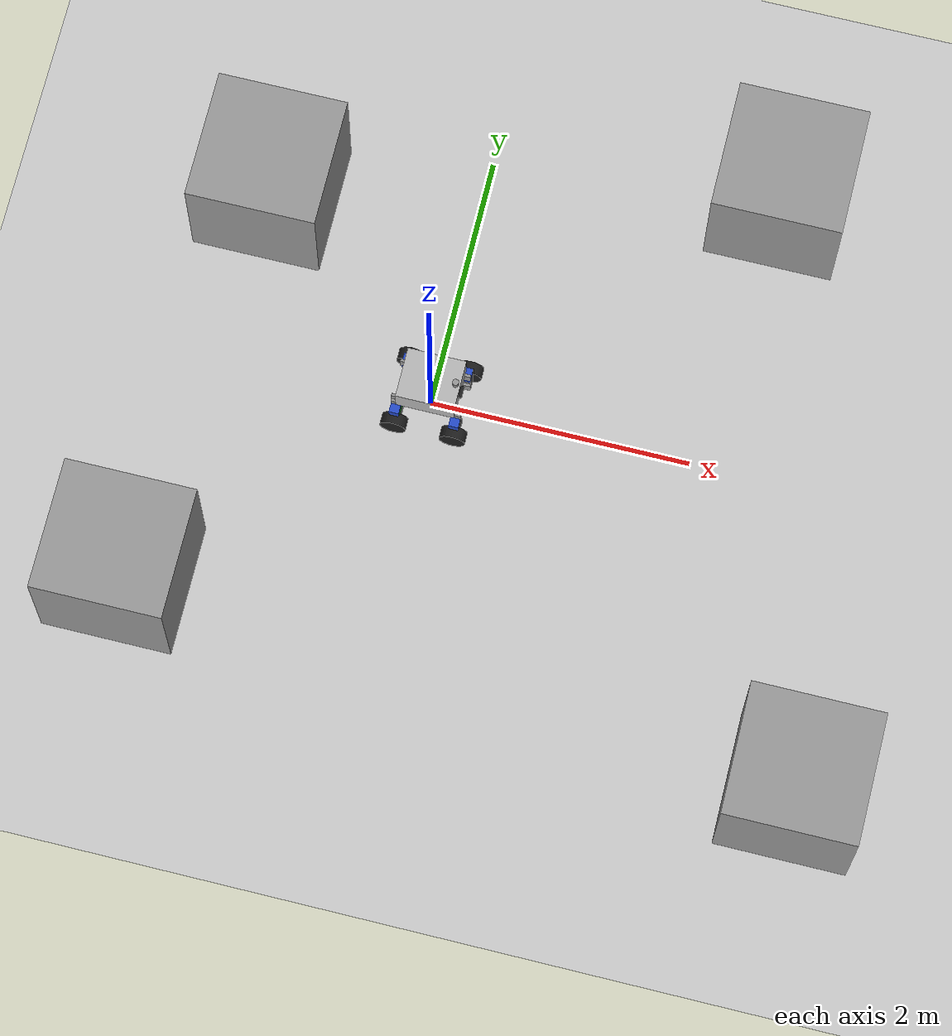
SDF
<sdf version="1.6">
 <world name="default">
  <light name="sun" type="directional">
   <pose>0 0 10 0 -0 0</pose>
   <diffuse>0.8 0.8 0.8 1</diffuse>
   <specular>0.2 0.2 0.2 1</specular>
   <attenuation>
    <range>1000</range>
    <constant>0.9</constant>
    <linear>0.01</linear>
    <quadratic>0.001</quadratic>
   </attenuation>
   <direction>-0.5 0.1 -0.9</direction>
  </light>
  <model name="ground_plane">
   <static>1</static>
   <link name="link">
    <collision name="collision">
     <geometry><plane><normal>0 0 1</normal><size>100 100</size></plane></geometry>
     <surface>
      <contact><collide_bitmask>65535</collide_bitmask></contact>
      <friction><ode><mu>100</mu><mu2>50</mu2></ode></friction>
     </surface>
    </collision>
    <visual name="visual">
     <cast_shadows>0</cast_shadows>
     <geometry><plane><normal>0 0 1</normal><size>100 100</size></plane></geometry>
     <material>
      <script><uri>file://media/materials/scripts/gazebo.material</uri><name>Gazebo/Grey</name></script>
     </material>
    </visual>
   </link>
  </model>
  <gravity>0 0 -9.8</gravity>
  <magnetic_field>6e-06 2.3e-05 -4.2e-05</magnetic_field>
  <atmosphere type="adiabatic"/>
  <physics name="default_physics" default="0" type="ode">
   <max_step_size>0.001</max_step_size>
   <real_time_factor>1</real_time_factor>
   <real_time_update_rate>1000</real_time_update_rate>
  </physics>
  <scene><ambient>0.4 0.4 0.4 1</ambient><background>0.7 0.7 0.7 1</background><shadows>1</shadows></scene>
  <audio><device>default</device></audio>
  <spherical_coordinates>
   <surface_model>EARTH_WGS84</surface_model>
   <latitude_deg>0</latitude_deg>
   <longitude_deg>0</longitude_deg>
   <elevation>0</elevation>
   <heading_deg>0</heading_deg>
  </spherical_coordinates>
  <model name="PF1">
   <link name="base_link">
    <inertial>
     <pose>0.009197 0 -0.056303 0 -0 0</pose>
     <mass>14.564</mass>
     <inertia>
      <ixx>5.27791</ixx>
      <ixy>0</ixy>
      <ixz>-0.00754182</ixz>
      <iyy>5.36461</iyy>
      <iyz>0</iyz>
      <izz>5.39816</izz>
     </inertia>
    </inertial>
    <collision name="base_link_collision"><geometry><box><size>0.45 0.39 0.2</size></box></geometry></collision>
    <collision name="base_link_fixed_joint_lump__base_sensor_collision_1">
     <geometry><cylinder><length>0.01</length><radius>0.005</radius></cylinder></geometry>
    </collision>
    <collision name="base_link_fixed_joint_lump__camera_link_collision_2">
     <pose>0.2375 -0.0175 0 0 -0 0</pose>
     <geometry><box><size>0.02505 0.09 0.025</size></box></geometry>
     <surface>
      <contact><ode><kp>1e+13</kp><kd>1</kd></ode></contact>
      <friction><ode><mu2>1</mu2><fdir1>0 0 0</fdir1></ode></friction>
     </surface>
    </collision>
    <collision name="base_link_fixed_joint_lump__front_lidar_collision_3">
     <pose>0.19 0 0.125 0 -0 0</pose>
     <geometry><cylinder><length>0.05</length><radius>0.025</radius></cylinder></geometry>
    </collision>
    <collision name="base_link_fixed_joint_lump__frame1_bl_collision_4">
     <pose>-0.135 0.14 -0.1 0 -0 0</pose>
     <geometry><box><size>0.27 0.02 0.09</size></box></geometry>
    </collision>
    <collision name="base_link_fixed_joint_lump__frame2_bl_collision_5">
     <pose>-0.23 0.16 -0.145 0 -0 0</pose>
     <geometry><box><size>0.08 0.02 0.05</size></box></geometry>
    </collision>
    <collision name="base_link_fixed_joint_lump__gear_bl_collision_6">
     <pose>-0.23 0.195 -0.205 0 -0 0</pose>
     <geometry><box><size>0.075 0.09 0.07</size></box></geometry>
    </collision>
    <collision name="base_link_fixed_joint_lump__frame1_br_collision_7">
     <pose>-0.135 -0.14 -0.1 0 -0 0</pose>
     <geometry><box><size>0.27 0.02 0.09</size></box></geometry>
    </collision>
    <collision name="base_link_fixed_joint_lump__frame2_br_collision_8">
     <pose>-0.23 -0.16 -0.145 0 -0 0</pose>
     <geometry><box><size>0.08 0.02 0.05</size></box></geometry>
    </collision>
    <collision name="base_link_fixed_joint_lump__gear_br_collision_9">
     <pose>-0.23 -0.195 -0.205 0 -0 0</pose>
     <geometry><box><size>0.075 0.09 0.07</size></box></geometry>
    </collision>
    <collision name="base_link_fixed_joint_lump__frame1_fl_collision_10">
     <pose>0.135 0.14 -0.1 0 -0 0</pose>
     <geometry><box><size>0.27 0.02 0.09</size></box></geometry>
    </collision>
    <collision name="base_link_fixed_joint_lump__frame2_fl_collision_11">
     <pose>0.23 0.16 -0.145 0 -0 0</pose>
     <geometry><box><size>0.08 0.02 0.05</size></box></geometry>
    </collision>
    <collision name="base_link_fixed_joint_lump__gear_fl_collision_12">
     <pose>0.23 0.195 -0.205 0 -0 0</pose>
     <geometry><box><size>0.075 0.09 0.07</size></box></geometry>
    </collision>
    <collision name="base_link_fixed_joint_lump__frame1_fr_collision_13">
     <pose>0.135 -0.14 -0.1 0 -0 0</pose>
     <geometry><box><size>0.27 0.02 0.09</size></box></geometry>
    </collision>
    <collision name="base_link_fixed_joint_lump__frame2_fr_collision_14">
     <pose>0.23 -0.16 -0.145 0 -0 0</pose>
     <geometry><box><size>0.08 0.02 0.05</size></box></geometry>
    </collision>
    <collision name="base_link_fixed_joint_lump__gear_fr_collision_15">
     <pose>0.23 -0.195 -0.205 0 -0 0</pose>
     <geometry><box><size>0.075 0.09 0.07</size></box></geometry>
    </collision>
    <collision name="base_link_fixed_joint_lump__imu_link_collision_16">
     <geometry><cylinder><length>0.01</length><radius>0.005</radius></cylinder></geometry>
    </collision>
    <visual name="base_link_visual"><geometry><box><size>0.45 0.39 0.2</size></box></geometry></visual>
    <visual name="base_link_fixed_joint_lump__base_sensor_visual_1">
     <geometry><cylinder><length>0.01</length><radius>0.005</radius></cylinder></geometry>
    </visual>
    <visual name="base_link_fixed_joint_lump__camera_link_visual_2">
     <pose>0.2375 -0.0175 0 1.5708 -0 1.5708</pose>
     <geometry><box><size>0.09 0.025 0.02505</size></box></geometry>
     <material>
      <script><name>Gazebo/Black</name><uri>file://media/materials/scripts/gazebo.material</uri></script>
     </material>
    </visual>
    <visual name="base_link_fixed_joint_lump__front_lidar_visual_3">
     <pose>0.19 0 0.125 0 -0 0</pose>
     <geometry><cylinder><length>0.05</length><radius>0.025</radius></cylinder></geometry>
     <material>
      <script><name>Gazebo/Grey</name><uri>file://media/materials/scripts/gazebo.material</uri></script>
     </material>
    </visual>
    <visual name="base_link_fixed_joint_lump__frame1_bl_visual_4">
     <pose>-0.135 0.14 -0.1 0 -0 0</pose>
     <geometry><box><size>0.27 0.02 0.09</size></box></geometry>
     <material>
      <script><name>Gazebo/Grey</name><uri>file://media/materials/scripts/gazebo.material</uri></script>
     </material>
    </visual>
    <visual name="base_link_fixed_joint_lump__frame2_bl_visual_5">
     <pose>-0.23 0.16 -0.145 0 -0 0</pose>
     <geometry><box><size>0.08 0.02 0.05</size></box></geometry>
     <material>
      <script><name>Gazebo/Grey</name><uri>file://media/materials/scripts/gazebo.material</uri></script>
     </material>
    </visual>
    <visual name="base_link_fixed_joint_lump__gear_bl_visual_6">
     <pose>-0.23 0.195 -0.205 0 -0 0</pose>
     <geometry><box><size>0.075 0.09 0.07</size></box></geometry>
     <material>
      <script><name>Gazebo/Blue</name><uri>file://media/materials/scripts/gazebo.material</uri></script>
     </material>
    </visual>
    <visual name="base_link_fixed_joint_lump__frame1_br_visual_7">
     <pose>-0.135 -0.14 -0.1 0 -0 0</pose>
     <geometry><box><size>0.27 0.02 0.09</size></box></geometry>
     <material>
      <script><name>Gazebo/Grey</name><uri>file://media/materials/scripts/gazebo.material</uri></script>
     </material>
    </visual>
    <visual name="base_link_fixed_joint_lump__frame2_br_visual_8">
     <pose>-0.23 -0.16 -0.145 0 -0 0</pose>
     <geometry><box><size>0.08 0.02 0.05</size></box></geometry>
     <material>
      <script><name>Gazebo/Grey</name><uri>file://media/materials/scripts/gazebo.material</uri></script>
     </material>
    </visual>
    <visual name="base_link_fixed_joint_lump__gear_br_visual_9">
     <pose>-0.23 -0.195 -0.205 0 -0 0</pose>
     <geometry><box><size>0.075 0.09 0.07</size></box></geometry>
     <material>
      <script><name>Gazebo/Blue</name><uri>file://media/materials/scripts/gazebo.material</uri></script>
     </material>
    </visual>
    <visual name="base_link_fixed_joint_lump__frame1_fl_visual_10">
     <pose>0.135 0.14 -0.1 0 -0 0</pose>
     <geometry><box><size>0.27 0.02 0.09</size></box></geometry>
     <material>
      <script><name>Gazebo/Grey</name><uri>file://media/materials/scripts/gazebo.material</uri></script>
     </material>
    </visual>
    <visual name="base_link_fixed_joint_lump__frame2_fl_visual_11">
     <pose>0.23 0.16 -0.145 0 -0 0</pose>
     <geometry><box><size>0.08 0.02 0.05</size></box></geometry>
     <material>
      <script><name>Gazebo/Grey</name><uri>file://media/materials/scripts/gazebo.material</uri></script>
     </material>
    </visual>
    <visual name="base_link_fixed_joint_lump__gear_fl_visual_12">
     <pose>0.23 0.195 -0.205 0 -0 0</pose>
     <geometry><box><size>0.075 0.09 0.07</size></box></geometry>
     <material>
      <script><name>Gazebo/Blue</name><uri>file://media/materials/scripts/gazebo.material</uri></script>
     </material>
    </visual>
    <visual name="base_link_fixed_joint_lump__frame1_fr_visual_13">
     <pose>0.135 -0.14 -0.1 0 -0 0</pose>
     <geometry><box><size>0.27 0.02 0.09</size></box></geometry>
     <material>
      <script><name>Gazebo/Grey</name><uri>file://media/materials/scripts/gazebo.material</uri></script>
     </material>
    </visual>
    <visual name="base_link_fixed_joint_lump__frame2_fr_visual_14">
     <pose>0.23 -0.16 -0.145 0 -0 0</pose>
     <geometry><box><size>0.08 0.02 0.05</size></box></geometry>
     <material>
      <script><name>Gazebo/Grey</name><uri>file://media/materials/scripts/gazebo.material</uri></script>
     </material>
    </visual>
    <visual name="base_link_fixed_joint_lump__gear_fr_visual_15">
     <pose>0.23 -0.195 -0.205 0 -0 0</pose>
     <geometry><box><size>0.075 0.09 0.07</size></box></geometry>
     <material>
      <script><name>Gazebo/Blue</name><uri>file://media/materials/scripts/gazebo.material</uri></script>
     </material>
    </visual>
    <visual name="base_link_fixed_joint_lump__imu_link_visual_16">
     <geometry><cylinder><length>0.01</length><radius>0.005</radius></cylinder></geometry>
     <material>
      <script><name>Gazebo/Blue</name><uri>file://media/materials/scripts/gazebo.material</uri></script>
     </material>
    </visual>
    <sensor name="cameracolor" type="camera">
     <camera name="camera">
      <horizontal_fov>1.21126</horizontal_fov>
      <image><width>640</width><height>480</height><format>RGB_INT8</format></image>
      <clip><near>0.1</near><far>100</far></clip>
      <noise><type>gaussian</type><mean>0</mean><stddev>0.007</stddev></noise>
     </camera>
     <always_on>1</always_on>
     <update_rate>30</update_rate>
     <visualize>1</visualize>
     <pose>0.2375 0 0 0 -0 0</pose>
    </sensor>
    <sensor name="cameraired1" type="camera">
     <camera name="camera">
      <horizontal_fov>1.48702</horizontal_fov>
      <image><width>1280</width><height>720</height><format>L_INT8</format></image>
      <clip><near>0.1</near><far>100</far></clip>
      <noise><type>gaussian</type><mean>0</mean><stddev>0.05</stddev></noise>
     </camera>
     <always_on>1</always_on>
     <update_rate>90</update_rate>
     <visualize>0</visualize>
     <pose>0.2375 0 0 0 -0 0</pose>
    </sensor>
    <sensor name="cameraired2" type="camera">
     <camera name="camera">
      <horizontal_fov>1.48702</horizontal_fov>
      <image><width>1280</width><height>720</height><format>L_INT8</format></image>
      <clip><near>0.1</near><far>100</far></clip>
      <noise><type>gaussian</type><mean>0</mean><stddev>0.05</stddev></noise>
     </camera>
     <always_on>1</always_on>
     <update_rate>90</update_rate>
     <visualize>0</visualize>
     <pose>0.2375 0 0 0 -0 0</pose>
    </sensor>
    <sensor name="cameradepth" type="depth">
     <camera name="camera">
      <horizontal_fov>1.48702</horizontal_fov>
      <image><width>1280</width><height>720</height></image>
      <clip><near>0.1</near><far>100</far></clip>
      <noise><type>gaussian</type><mean>0</mean><stddev>0.1</stddev></noise>
     </camera>
     <always_on>1</always_on>
     <update_rate>90</update_rate>
     <visualize>0</visualize>
     <pose>0.2375 0 0 0 -0 0</pose>
    </sensor>
    <sensor name="$front_lidar_sensor" type="ray">
     <visualize>1</visualize>
     <update_rate>10</update_rate>
     <ray>
      <scan>
       <horizontal>
        <samples>400</samples>
        <resolution>1</resolution>
        <min_angle>-1.5708</min_angle>
        <max_angle>1.5708</max_angle>
       </horizontal>
       <vertical><samples>1</samples><min_angle>0</min_angle><max_angle>0</max_angle></vertical>
      </scan>
      <range><min>0.1</min><max>20</max><resolution>0.01</resolution></range>
      <noise><type>gaussian</type><mean>0</mean><stddev>0.01</stddev></noise>
     </ray>
     <plugin name="gazebo_ros_lidar_controller" filename="libgazebo_ros_laser.so">
      <topicName>scan</topicName>
      <frameName>front_lidar</frameName>
      <robotNamespace>/</robotNamespace>
     </plugin>
     <pose>0.19 0 0.125 0 -0 0</pose>
    </sensor>
    <sensor name="imu_sensor" type="imu">
     <always_on>1</always_on>
     <update_rate>100</update_rate>
     <visualize>1</visualize>
     <topic>data</topic>
     <plugin name="imu_plugin" filename="libgazebo_ros_imu_sensor.so">
      <topicName>imu/data</topicName>
      <bodyName>imu_link</bodyName>
      <updateRateHZ>10.0</updateRateHZ>
      <gaussianNoise>0.0</gaussianNoise>
      <xyzOffset>0 0 0</xyzOffset>
      <rpyOffset>0 0 0</rpyOffset>
      <frameName>imu_link</frameName>
      <robotNamespace>/</robotNamespace>
     </plugin>
    </sensor>
   </link>
   <link name="frame3_bl">
    <pose>-0.23 0.215 -0.285 0 -0 0</pose>
    <inertial>
     <pose>0 -0.01 -0.045 0 -0 0</pose>
     <mass>2</mass>
     <inertia>
      <ixx>2.00425</ixx>
      <ixy>0</ixy>
      <ixz>0</ixz>
      <iyy>2.00405</iyy>
      <iyz>-0.0009</iyz>
      <izz>2.0002</izz>
     </inertia>
    </inertial>
    <collision name="frame3_bl_collision">
     <geometry><box><size>0.075 0.09 0.09</size></box></geometry>
     <surface><friction><ode><mu>2500</mu><mu2>2500</mu2></ode></friction></surface>
    </collision>
    <collision name="frame3_bl_fixed_joint_lump__motor_bl_collision_1">
     <pose>0 -0.02 -0.09 0 -0 0</pose>
     <geometry><box><size>0.075 0.09 0.09</size></box></geometry>
    </collision>
    <visual name="frame3_bl_visual">
     <geometry><box><size>0.075 0.09 0.09</size></box></geometry>
     <material>
      <script><name>Gazebo/Grey</name><uri>file://media/materials/scripts/gazebo.material</uri></script>
     </material>
    </visual>
    <visual name="frame3_bl_fixed_joint_lump__motor_bl_visual_1">
     <pose>0 -0.02 -0.09 0 -0 0</pose>
     <geometry><box><size>0.075 0.09 0.09</size></box></geometry>
     <material>
      <script><name>Gazebo/Grey</name><uri>file://media/materials/scripts/gazebo.material</uri></script>
     </material>
    </visual>
   </link>
   <joint name="frame3_bl_to_gear_bl" type="revolute">
    <child>frame3_bl</child>
    <parent>base_link</parent>
    <axis>
     <xyz>0 0 1</xyz>
     <limit><lower>-3.1415</lower><upper>3.1415</upper><effort>30</effort><velocity>10</velocity></limit>
     <dynamics><spring_reference>0</spring_reference><spring_stiffness>0</spring_stiffness></dynamics>
     <use_parent_model_frame>1</use_parent_model_frame>
    </axis>
   </joint>
   <link name="wheel_bl">
    <pose>-0.23 0.285 -0.375 0 -0 0</pose>
    <inertial>
     <mass>1</mass>
     <inertia><ixx>1</ixx><ixy>0</ixy><ixz>0</ixz><iyy>1</iyy><iyz>0</iyz><izz>1</izz></inertia>
    </inertial>
    <collision name="wheel_bl_collision">
     <pose>0 0 0 1.57 -0 0</pose>
     <geometry><cylinder><length>0.09</length><radius>0.1</radius></cylinder></geometry>
     <surface>
      <contact><ode><kp>1e+07</kp><kd>1</kd></ode></contact>
      <friction><ode><mu>200</mu><mu2>100</mu2></ode></friction>
     </surface>
    </collision>
    <visual name="wheel_bl_visual">
     <pose>0 0 0 1.57 -0 0</pose>
     <geometry><cylinder><length>0.09</length><radius>0.1</radius></cylinder></geometry>
     <material>
      <script><name>Gazebo/Black</name><uri>file://media/materials/scripts/gazebo.material</uri></script>
     </material>
    </visual>
   </link>
   <joint name="wheel_bl_to_motor_bl" type="revolute">
    <child>wheel_bl</child>
    <parent>frame3_bl</parent>
    <axis>
     <xyz>0 1 0</xyz>
     <limit><lower>-1e+16</lower><upper>1e+16</upper></limit>
     <dynamics>
      <damping>0.1</damping>
      <friction>0</friction>
      <spring_reference>0</spring_reference>
      <spring_stiffness>0</spring_stiffness>
     </dynamics>
     <use_parent_model_frame>1</use_parent_model_frame>
    </axis>
   </joint>
   <link name="frame3_br">
    <pose>-0.23 -0.175 -0.285 0 -0 0</pose>
    <inertial>
     <pose>0 0.01 -0.045 0 -0 0</pose>
     <mass>2</mass>
     <inertia>
      <ixx>2.00425</ixx>
      <ixy>0</ixy>
      <ixz>0</ixz>
      <iyy>2.00405</iyy>
      <iyz>0.0009</iyz>
      <izz>2.0002</izz>
     </inertia>
    </inertial>
    <collision name="frame3_br_collision">
     <geometry><box><size>0.075 0.09 0.09</size></box></geometry>
     <surface><friction><ode><mu>2500</mu><mu2>2500</mu2></ode></friction></surface>
    </collision>
    <collision name="frame3_br_fixed_joint_lump__motor_br_collision_1">
     <pose>0 0.02 -0.09 0 -0 0</pose>
     <geometry><box><size>0.075 0.09 0.09</size></box></geometry>
    </collision>
    <visual name="frame3_br_visual">
     <geometry><box><size>0.075 0.09 0.09</size></box></geometry>
     <material>
      <script><name>Gazebo/Green</name><uri>file://media/materials/scripts/gazebo.material</uri></script>
     </material>
    </visual>
    <visual name="frame3_br_fixed_joint_lump__motor_br_visual_1">
     <pose>0 0.02 -0.09 0 -0 0</pose>
     <geometry><box><size>0.075 0.09 0.09</size></box></geometry>
     <material>
      <script><name>Gazebo/Grey</name><uri>file://media/materials/scripts/gazebo.material</uri></script>
     </material>
    </visual>
   </link>
   <joint name="frame3_br_to_gear_br" type="revolute">
    <child>frame3_br</child>
    <parent>base_link</parent>
    <axis>
     <xyz>0 0 1</xyz>
     <limit><lower>-3.1415</lower><upper>3.1415</upper><effort>30</effort><velocity>10</velocity></limit>
     <dynamics><spring_reference>0</spring_reference><spring_stiffness>0</spring_stiffness></dynamics>
     <use_parent_model_frame>1</use_parent_model_frame>
    </axis>
   </joint>
   <link name="wheel_br">
    <pose>-0.23 -0.245 -0.375 0 -0 0</pose>
    <inertial>
     <mass>1</mass>
     <inertia><ixx>1</ixx><ixy>0</ixy><ixz>0</ixz><iyy>1</iyy><iyz>0</iyz><izz>1</izz></inertia>
    </inertial>
    <collision name="wheel_br_collision">
     <pose>0 0 0 1.57 -0 0</pose>
     <geometry><cylinder><length>0.09</length><radius>0.1</radius></cylinder></geometry>
     <surface>
      <contact><ode><kp>1e+07</kp><kd>1</kd></ode></contact>
      <friction><ode><mu>200</mu><mu2>100</mu2></ode></friction>
     </surface>
    </collision>
    <visual name="wheel_br_visual">
     <pose>0 0 0 1.57 -0 0</pose>
     <geometry><cylinder><length>0.09</length><radius>0.1</radius></cylinder></geometry>
     <material>
      <script><name>Gazebo/Black</name><uri>file://media/materials/scripts/gazebo.material</uri></script>
     </material>
    </visual>
   </link>
   <joint name="wheel_br_to_motor_br" type="revolute">
    <child>wheel_br</child>
    <parent>frame3_br</parent>
    <axis>
     <xyz>0 1 0</xyz>
     <limit><lower>-1e+16</lower><upper>1e+16</upper></limit>
     <dynamics>
      <damping>0.1</damping>
      <friction>0</friction>
      <spring_reference>0</spring_reference>
      <spring_stiffness>0</spring_stiffness>
     </dynamics>
     <use_parent_model_frame>1</use_parent_model_frame>
    </axis>
   </joint>
   <link name="frame3_fl">
    <pose>0.23 0.215 -0.285 0 -0 0</pose>
    <inertial>
     <pose>0 -0.01 -0.045 0 -0 0</pose>
     <mass>2</mass>
     <inertia>
      <ixx>2.00425</ixx>
      <ixy>0</ixy>
      <ixz>0</ixz>
      <iyy>2.00405</iyy>
      <iyz>-0.0009</iyz>
      <izz>2.0002</izz>
     </inertia>
    </inertial>
    <collision name="frame3_fl_collision">
     <geometry><box><size>0.075 0.09 0.09</size></box></geometry>
     <surface><friction><ode><mu>2500</mu><mu2>2500</mu2></ode></friction></surface>
    </collision>
    <collision name="frame3_fl_fixed_joint_lump__motor_fl_collision_1">
     <pose>0 -0.02 -0.09 0 -0 0</pose>
     <geometry><box><size>0.075 0.09 0.09</size></box></geometry>
    </collision>
    <visual name="frame3_fl_visual">
     <geometry><box><size>0.075 0.09 0.09</size></box></geometry>
     <material>
      <script><name>Gazebo/Grey</name><uri>file://media/materials/scripts/gazebo.material</uri></script>
     </material>
    </visual>
    <visual name="frame3_fl_fixed_joint_lump__motor_fl_visual_1">
     <pose>0 -0.02 -0.09 0 -0 0</pose>
     <geometry><box><size>0.075 0.09 0.09</size></box></geometry>
     <material>
      <script><name>Gazebo/Grey</name><uri>file://media/materials/scripts/gazebo.material</uri></script>
     </material>
    </visual>
   </link>
   <joint name="frame3_fl_to_gear_fl" type="revolute">
    <child>frame3_fl</child>
    <parent>base_link</parent>
    <axis>
     <xyz>0 0 1</xyz>
     <limit><lower>-3.1415</lower><upper>3.1415</upper><effort>30</effort><velocity>10</velocity></limit>
     <dynamics><spring_reference>0</spring_reference><spring_stiffness>0</spring_stiffness></dynamics>
     <use_parent_model_frame>1</use_parent_model_frame>
    </axis>
    <physics><ode><limit><cfm>0</cfm><erp>0.2</erp></limit></ode></physics>
   </joint>
   <link name="wheel_fl">
    <pose>0.23 0.285 -0.375 0 -0 0</pose>
    <inertial>
     <mass>1</mass>
     <inertia><ixx>1</ixx><ixy>0</ixy><ixz>0</ixz><iyy>1</iyy><iyz>0</iyz><izz>1</izz></inertia>
    </inertial>
    <collision name="wheel_fl_collision">
     <pose>0 0 0 1.57 -0 0</pose>
     <geometry><cylinder><length>0.09</length><radius>0.1</radius></cylinder></geometry>
     <surface>
      <contact><ode><kp>1e+07</kp><kd>1</kd></ode></contact>
      <friction><ode><mu>200</mu><mu2>100</mu2></ode></friction>
     </surface>
    </collision>
    <visual name="wheel_fl_visual">
     <pose>0 0 0 1.57 -0 0</pose>
     <geometry><cylinder><length>0.09</length><radius>0.1</radius></cylinder></geometry>
     <material>
      <script><name>Gazebo/Black</name><uri>file://media/materials/scripts/gazebo.material</uri></script>
     </material>
    </visual>
   </link>
   <joint name="wheel_fl_to_motor_fl" type="revolute">
    <child>wheel_fl</child>
    <parent>frame3_fl</parent>
    <axis>
     <xyz>0 1 0</xyz>
     <limit><lower>-1e+16</lower><upper>1e+16</upper></limit>
     <dynamics>
      <damping>0.1</damping>
      <friction>0</friction>
      <spring_reference>0</spring_reference>
      <spring_stiffness>0</spring_stiffness>
     </dynamics>
     <use_parent_model_frame>1</use_parent_model_frame>
    </axis>
   </joint>
   <link name="frame3_fr">
    <pose>0.23 -0.175 -0.285 0 -0 0</pose>
    <inertial>
     <pose>0 0.01 -0.045 0 -0 0</pose>
     <mass>2</mass>
     <inertia>
      <ixx>2.00425</ixx>
      <ixy>0</ixy>
      <ixz>0</ixz>
      <iyy>2.00405</iyy>
      <iyz>0.0009</iyz>
      <izz>2.0002</izz>
     </inertia>
    </inertial>
    <collision name="frame3_fr_collision">
     <geometry><box><size>0.075 0.09 0.09</size></box></geometry>
     <surface><friction><ode><mu>2500</mu><mu2>2500</mu2></ode></friction></surface>
    </collision>
    <collision name="frame3_fr_fixed_joint_lump__motor_fr_collision_1">
     <pose>0 0.02 -0.09 0 -0 0</pose>
     <geometry><box><size>0.075 0.09 0.09</size></box></geometry>
    </collision>
    <visual name="frame3_fr_visual">
     <geometry><box><size>0.075 0.09 0.09</size></box></geometry>
     <material>
      <script><name>Gazebo/Grey</name><uri>file://media/materials/scripts/gazebo.material</uri></script>
     </material>
    </visual>
    <visual name="frame3_fr_fixed_joint_lump__motor_fr_visual_1">
     <pose>0 0.02 -0.09 0 -0 0</pose>
     <geometry><box><size>0.075 0.09 0.09</size></box></geometry>
     <material>
      <script><name>Gazebo/Grey</name><uri>file://media/materials/scripts/gazebo.material</uri></script>
     </material>
    </visual>
   </link>
   <joint name="frame3_fr_to_gear_fr" type="revolute">
    <child>frame3_fr</child>
    <parent>base_link</parent>
    <axis>
     <xyz>0 0 1</xyz>
     <limit><lower>-3.1415</lower><upper>3.1415</upper><effort>30</effort><velocity>10</velocity></limit>
     <dynamics><spring_reference>0</spring_reference><spring_stiffness>0</spring_stiffness></dynamics>
     <use_parent_model_frame>1</use_parent_model_frame>
    </axis>
   </joint>
   <link name="wheel_fr">
    <pose>0.23 -0.245 -0.375 0 -0 0</pose>
    <inertial>
     <mass>1</mass>
     <inertia><ixx>1</ixx><ixy>0</ixy><ixz>0</ixz><iyy>1</iyy><iyz>0</iyz><izz>1</izz></inertia>
    </inertial>
    <collision name="wheel_fr_collision">
     <pose>0 0 0 1.57 -0 0</pose>
     <geometry><cylinder><length>0.09</length><radius>0.1</radius></cylinder></geometry>
     <surface>
      <contact><ode><kp>1e+07</kp><kd>1</kd></ode></contact>
      <friction><ode><mu>200</mu><mu2>100</mu2></ode></friction>
     </surface>
    </collision>
    <visual name="wheel_fr_visual">
     <pose>0 0 0 1.57 -0 0</pose>
     <geometry><cylinder><length>0.09</length><radius>0.1</radius></cylinder></geometry>
     <material>
      <script><name>Gazebo/Black</name><uri>file://media/materials/scripts/gazebo.material</uri></script>
     </material>
    </visual>
   </link>
   <joint name="wheel_fr_to_motor_fr" type="revolute">
    <child>wheel_fr</child>
    <parent>frame3_fr</parent>
    <axis>
     <xyz>0 1 0</xyz>
     <limit><lower>-1e+16</lower><upper>1e+16</upper></limit>
     <dynamics>
      <damping>0.1</damping>
      <friction>0</friction>
      <spring_reference>0</spring_reference>
      <spring_stiffness>0</spring_stiffness>
     </dynamics>
     <use_parent_model_frame>1</use_parent_model_frame>
    </axis>
   </joint>
   <plugin name="camera" filename="librealsense_gazebo_plugin.so">
    <prefix>camera</prefix>
    <depthUpdateRate>30.0</depthUpdateRate>
    <colorUpdateRate>30.0</colorUpdateRate>
    <infraredUpdateRate>30.0</infraredUpdateRate>
    <depthTopicName>depth/image_raw</depthTopicName>
    <depthCameraInfoTopicName>depth/camera_info</depthCameraInfoTopicName>
    <colorTopicName>color/image_raw</colorTopicName>
    <colorCameraInfoTopicName>color/camera_info</colorCameraInfoTopicName>
    <infrared1TopicName>infra1/image_raw</infrared1TopicName>
    <infrared1CameraInfoTopicName>infra1/camera_info</infrared1CameraInfoTopicName>
    <infrared2TopicName>infra2/image_raw</infrared2TopicName>
    <infrared2CameraInfoTopicName>infra2/camera_info</infrared2CameraInfoTopicName>
    <colorOpticalframeName>color_optical_frame</colorOpticalframeName>
    <depthOpticalframeName>depth_optical_frame</depthOpticalframeName>
    <infrared1OpticalframeName>infrared1_optical_frame</infrared1OpticalframeName>
    <infrared2OpticalframeName>infrared2_optical_frame</infrared2OpticalframeName>
    <rangeMinDepth>0.2</rangeMinDepth>
    <rangeMaxDepth>10.0</rangeMaxDepth>
    <pointCloud>1</pointCloud>
    <pointCloudTopicName>depth/color/points</pointCloudTopicName>
    <pointCloudCutoff>0.25</pointCloudCutoff>
    <pointCloudCutoffMax>9.0</pointCloudCutoffMax>
    <robotNamespace>/</robotNamespace>
   </plugin>
   <static>0</static>
   <plugin name="gazebo_ros_control" filename="libgazebo_ros_control.so">
    <robotNamespace>dtw_robot</robotNamespace>
    <robotSimType>gazebo_ros_control/DefaultRobotHWSim</robotSimType>
    <legacyModeNS>1</legacyModeNS>
   </plugin>
   <pose>-2e-06 -8e-06 0.475029 5e-06 1e-06 -9e-06</pose>
  </model>
  <model name="unit_box">
   <pose>3.31449 -2.30332 0.499995 -1e-05 -0 -0</pose>
   <link name="link">
    <inertial>
     <mass>1</mass>
     <inertia>
      <ixx>0.166667</ixx>
      <ixy>0</ixy>
      <ixz>0</ixz>
      <iyy>0.166667</iyy>
      <iyz>0</iyz>
      <izz>0.166667</izz>
     </inertia>
    </inertial>
    <collision name="collision"><geometry><box><size>1 1 1</size></box></geometry></collision>
    <visual name="visual">
     <geometry><box><size>1 1 1</size></box></geometry>
     <material>
      <script><name>Gazebo/Grey</name><uri>file://media/materials/scripts/gazebo.material</uri></script>
     </material>
    </visual>
   </link>
  </model>
  <model name="unit_box_0">
   <pose>2.22596 2.19854 0.499995 0 1e-05 0</pose>
   <link name="link">
    <inertial>
     <mass>1</mass>
     <inertia>
      <ixx>0.166667</ixx>
      <ixy>0</ixy>
      <ixz>0</ixz>
      <iyy>0.166667</iyy>
      <iyz>0</iyz>
      <izz>0.166667</izz>
     </inertia>
    </inertial>
    <collision name="collision"><geometry><box><size>1 1 1</size></box></geometry></collision>
    <visual name="visual">
     <geometry><box><size>1 1 1</size></box></geometry>
     <material>
      <script><name>Gazebo/Grey</name><uri>file://media/materials/scripts/gazebo.material</uri></script>
     </material>
    </visual>
   </link>
  </model>
  <model name="unit_box_1">
   <pose>-1.90386 -1.87376 0.499995 -1e-05 -0 0</pose>
   <link name="link">
    <inertial>
     <mass>1</mass>
     <inertia>
      <ixx>0.166667</ixx>
      <ixy>0</ixy>
      <ixz>0</ixz>
      <iyy>0.166667</iyy>
      <iyz>0</iyz>
      <izz>0.166667</izz>
     </inertia>
    </inertial>
    <collision name="collision"><geometry><box><size>1 1 1</size></box></geometry></collision>
    <visual name="visual">
     <geometry><box><size>1 1 1</size></box></geometry>
     <material>
      <script><name>Gazebo/Grey</name><uri>file://media/materials/scripts/gazebo.material</uri></script>
     </material>
    </visual>
   </link>
  </model>
  <model name="unit_box_2">
   <pose>-1.59659 1.33267 0.5 0 -0 0</pose>
   <link name="link">
    <inertial>
     <mass>1</mass>
     <inertia>
      <ixx>0.166667</ixx>
      <ixy>0</ixy>
      <ixz>0</ixz>
      <iyy>0.166667</iyy>
      <iyz>0</iyz>
      <izz>0.166667</izz>
     </inertia>
    </inertial>
    <collision name="collision"><geometry><box><size>1 1 1</size></box></geometry></collision>
    <visual name="visual">
     <geometry><box><size>1 1 1</size></box></geometry>
     <material>
      <script><name>Gazebo/Grey</name><uri>file://media/materials/scripts/gazebo.material</uri></script>
     </material>
    </visual>
   </link>
  </model>
 </world>
</sdf>
